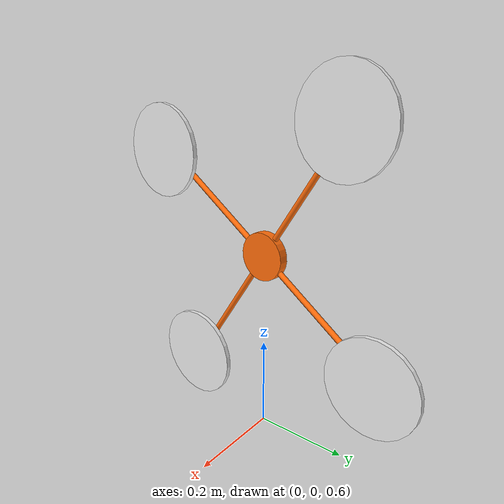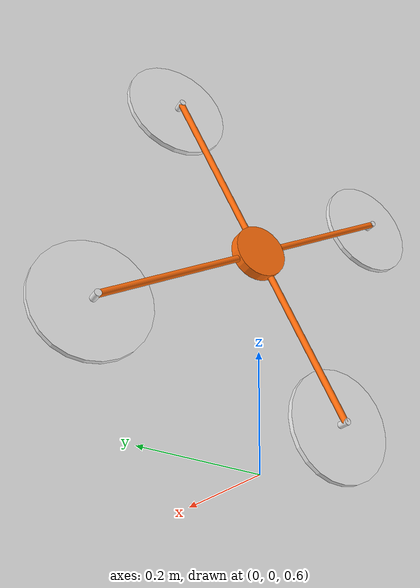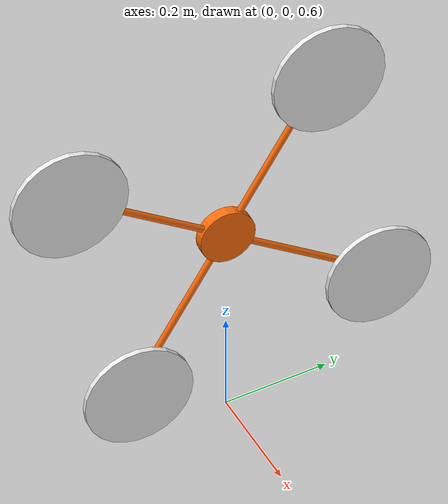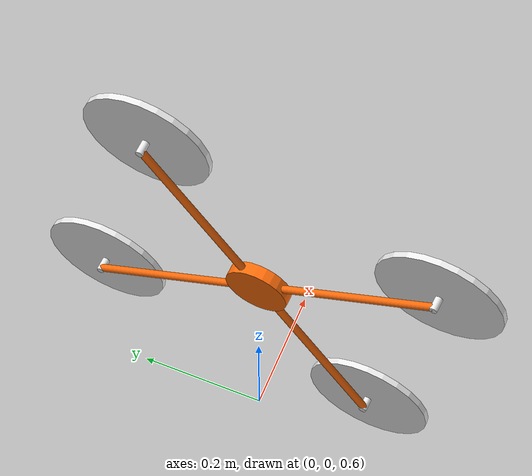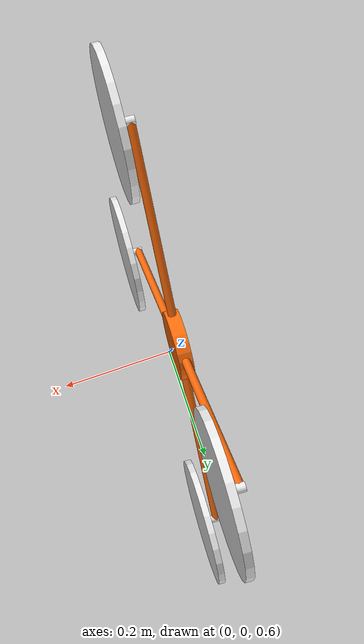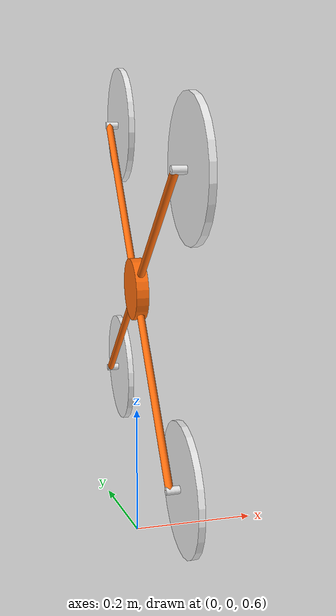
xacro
<?xml version="1.0"?>

<robot name="quadrotor" xmlns:xacro="http://www.ros.org/wiki/xacro">

    <xacro:property name="M_PI" value="3.1415926535897931" />

    <!-- Included URDF Files -->
    <xacro:include filename="$(find odroid)/robot_description/urdf/spherical_quad.xacro" />

    <!-- Instantiate quadrotor_base_macro once (has no parameters atm) -->
    <xacro:quadrotor_base_macro />

    <xacro:arg name="world_frame" default="world"/>
    <xacro:arg name="base_link_frame" default="base_link"/>
    <xacro:include filename="$(find odroid)/robot_description/urdf/quadrotor_plugins.gazebo.xacro" />

</robot>

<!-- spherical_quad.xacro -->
<robot name="quadrotor" xmlns:xacro="http://www.ros.org/wiki/xacro">

  <!-- Constants for robot dimensions -->
  <xacro:property name="PI" value="3.1415926535897931"/>
  <xacro:property name="mass" value="0.755" /> <!-- arbitrary value for mass -->
  <xacro:property name="width" value="0.1" /> <!-- Square dimensions (widthxwidth) of beams -->
  <xacro:property name="height1" value="2" /> <!-- Link 1 -->
  <xacro:property name="height2" value="1" /> <!-- Link 2 -->
  <xacro:property name="height3" value="1" /> <!-- Link 3 -->
  <xacro:property name="camera_link" value="0.05" /> <!-- Size of square 'camera' box -->
  <xacro:property name="axel_offset" value="0.05" /> <!-- Space btw top of beam and the each joint -->

<!-- From Matlab

J1=55710.50413e-7;
J2=55710.50413e-7;
J3=105053.7595e-7;
J=diag([J1 J2 J3]);
m=0.755;

-->

  <xacro:macro name="quadrotor_base_macro">

  <link name="world"/>

	<joint name="spherical_joint" type="revolute">
	 <origin xyz="0 0 1" rpy="1 0 0"/>
	 <parent link="world"/>
	 <child link="my_link"/>
	 <calibration rising="0.0"/>
	 <dynamics damping="0.0" friction="0.0"/>
	 <limit effort="30" velocity="1.0" lower="-2.2" upper="0.7" />
	 <safety_controller k_velocity="10" k_position="15" soft_lower_limit="-2.0" soft_upper_limit="0.5" />
  </joint>

 <link name="my_link">
   <inertial>
     <origin xyz="0 0 0" rpy="0 0 0"/>
     <mass value="0.1"/>
     <inertia ixx="0"  ixy="0"  ixz="0" iyy="0" iyz="0" izz="0" />
   </inertial>

   <visual>
     <origin xyz="0 0 0" rpy="0 0 0" />
     <geometry>
       <box size="0.001 0.001 0.001" />
     </geometry>
     <material name="Cyan">
       <color rgba="0 1.0 1.0 1.0"/>
     </material>
   </visual>

   <collision>
     <origin xyz="0 0 0" rpy="0 0 0"/>
     <geometry>
       <cylinder radius="0.1" length="0.1"/>
     </geometry>
   </collision>
 </link>

 	<joint name="spherical_joint2" type="revolute">
	 <origin xyz="0 0 0" rpy="0 1.5 0"/>
	 <parent link="my_link"/>
	 <child link="base_link"/>
	 <calibration rising="0.0"/>
	 <dynamics damping="0.0" friction="0.0"/>
	 <limit effort="30" velocity="1.0" lower="-2.2" upper="0.7" />
	 <safety_controller k_velocity="10" k_position="15" soft_lower_limit="-2.0" soft_upper_limit="0.5" />
 </joint>

  <link name="base_link">
  <gravity>true</gravity>
    <inertial>
      <origin xyz="0 0 0" rpy="0 0 0"/>
      <mass value="1.176"/>
      <inertia
        ixx="0.009773" ixy="0.0" ixz="0.0"
        iyy="0.009773" iyz="0.0"
        izz="0.01749"/>
    </inertial>
    <origin xyz="0 0 0" rpy="0 0 0" />
    <collision name='collision'>
      <geometry>
        <sphere radius = "0.0001" />
      </geometry>
    </collision>

    <visual name="quadrotor_center">
  <geometry>
  <cylinder radius="0.05" length="0.02" />
  </geometry>
  <material name="orange">
  <color rgba="${255/255} ${108/255} ${10/255} 1.0"/>
  </material>
    </visual>

    <visual name='quadrotor_x_arms'>
  <origin xyz = "0.0 0.0 0.0" rpy ="0.0 1.5707 0.0" />
  <geometry>
  <cylinder radius=".006" length="0.66" />
  </geometry>
  <material name="orange">
  <ambient> 0 0 0 1 </ambient>
  </material>
    </visual>

    <visual name='quadrotor_y_arms'>
<origin xyz="0.0 0.0 0.0" rpy="0.0 1.5707 1.5707" />
<geometry>
  <cylinder radius=".006" length="0.66" />
</geometry>
<material name="orange">
<ambient> 0 0 0 1 </ambient>
</material>
    </visual>

    <visual name='motor_pos_x'>
<origin xyz="0.33 0.0 0.006" rpy="0.0 0.0 0.0" />
<geometry>
<cylinder radius=".006" length="0.024" />
</geometry>
<material name="white">
  <ambient> 0.0 0.0 0.0 1.0 </ambient>
</material>
  </visual>
    <visual name='prop_pos_x'>
<origin xyz="0.33 0.0 0.02" rpy="0.0 0.0 0.0"/>
<geometry>
<cylinder radius=".1" length="0.01" />
</geometry>
<material name="white">
<ambient> 0.5 0.5 0.5 1.0 </ambient>
</material>
    </visual>
    <visual name='motor_neg_x'>
<origin xyz ="-0.33 0.0 0.006" rpy="0.0 0.0 0.0"/>
<geometry>
<cylinder radius=".006" length="0.024"/>
</geometry>
<material name="white">
<ambient> 0.0 0.0 0.0 1.0 </ambient>
</material>
    </visual>
    <visual name='prop_neg_x'>
<origin xyz="-0.33 0.0 0.02" rpy="0.0 0.0 0.0"/>
<geometry>
<cylinder   radius=".1" length="0.01" />
</geometry>
<material name="white">
<ambient> 0.5 0.5 0.5 1.0 </ambient>
</material>
    </visual>
    <visual name='motor_pos_y'>
<origin xyz="0.0 0.33 0.006" rpy="0.0 0.0 0.0"/>
<geometry>
<cylinder radius=".006" length="0.024" />
</geometry>
<material name="white">
<ambient> 0.0 0.0 0.0 1.0 </ambient>
</material>
    </visual>
    <visual name='prop_pos_y'>
<origin xyz="0.0 0.33 0.02" rpy="0.0 0.0 0.0" />
<geometry>
<cylinder radius = ".1" length="0.01"/>
</geometry>
<material name="white">
<ambient> 0.5 0.5 0.5 1.0 </ambient>
</material>
    </visual>
    <visual name='motor_neg_y'>
<origin xyz="0.0 -0.33 0.006" rpy="0.0 0.0 0.0"/>
<geometry>
<cylinder radius=".006" length="0.024"/>
</geometry>
<material name="white">
<ambient> 0.0 0.0 0.0 1.0 </ambient>
</material>
    </visual>
    <visual name='prop_neg_y'>
<origin xyz="0.0 -0.33 0.02" rpy = "0.0 0.0 0.0"/>
<geometry>
<cylinder radius=".1" length="0.01"/>
</geometry>
<material name="white">
<ambient> 0.5 0.5 0.5 1.0 </ambient>
</material>
    </visual>

  </link>
  </xacro:macro>
</robot>

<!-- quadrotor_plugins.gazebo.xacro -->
<robot xmlns:xacro="http://www.ros.org/wiki/xacro">

  <arg name="world_frame" default="world"/> <!-- This should actually be "/world". See https://github.com/ros-simulation/gazebo_ros_pkgs/pull/324 -->
  <arg name="base_link_frame" default="base_link"/>

  <xacro:include filename="$(find odroid)/robot_description/urdf/quadrotor_sensors.gazebo.xacro" />

  <!-- Quadrotor Gazebo Plugins -->
  <xacro:quadrotor_sensors />

</robot>
